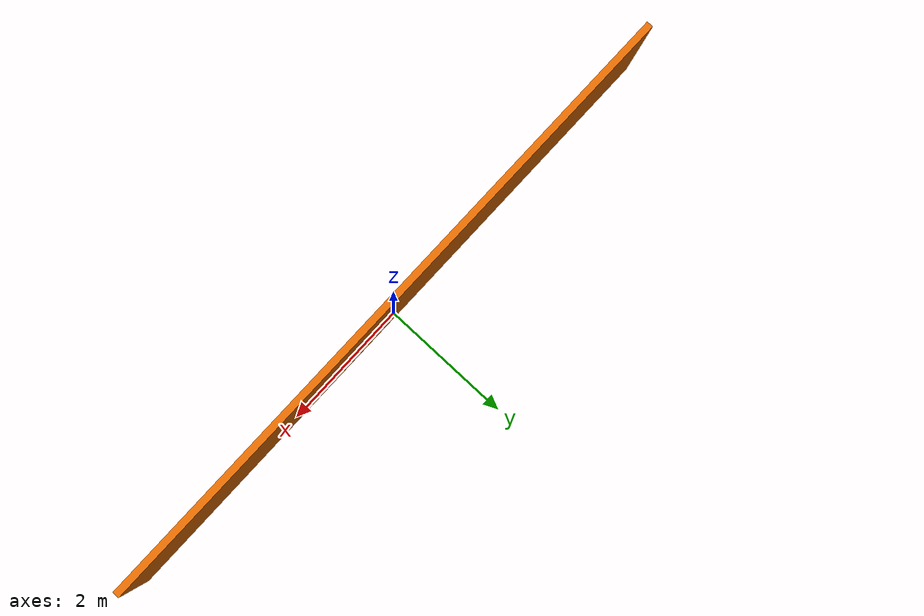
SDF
<?xml version='1.0'?>
<sdf version='1.7'>
  <model name='obs_box_10_0.1_1.5'>
      <link name='link_0'>
        <inertial>
          <mass>100</mass>
          <!-- 惯性张量建议也随尺寸调整，但对于 static 模型其实不重要 -->
          <inertia>
            <ixx>166.667</ixx><ixy>0</ixy><ixz>0</ixz>
            <iyy>166.667</iyy><iyz>0</iyz><izz>166.667</izz>
          </inertia>
        </inertial>

        <visual name='visual'>
          <pose>0 0 0.75 0 0 0</pose>
          <geometry>
            <box>
              <size>10.0 0.1 1.5</size>
            </box>
          </geometry>
          <material>
            <ambient>0.996 0.474 0.019 1</ambient> <!-- 保持你之前的橙色 -->
          <diffuse>0.996 0.474 0.019 1</diffuse>
          <specular>0.01 0.01 0.01 1</specular>
          </material>
        </visual>
      </link>

      <!-- 6. 开启自动休眠：如果不动时让它进入睡眠状态 -->
      <allow_auto_disable>1</allow_auto_disable>
      <static>0</static>
  </model>
</sdf>
